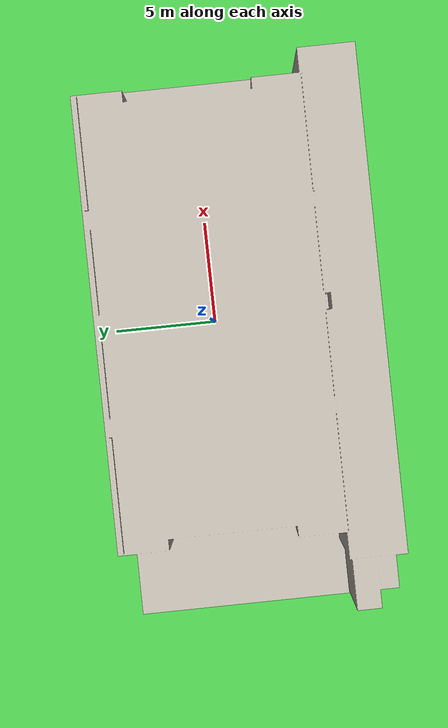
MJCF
<mujoco model="brutalist_room">
  <asset>
    <mesh
      name="brutalist_room_visual_mesh"
      file="assets/brutalist_room/brutalist_room.obj"
      scale="2 2 2"/>

    <texture
      name="brutalist_text"
      type="2d"
      file="assets/brutalist_room/Concrete_1_B.png"/>

    <material
      name="brutalist_mat"
      texture="brutalist_text"
      texuniform="false"
      reflectance="0.0"
      shininess="0.0"
      specular="0.0"/>
  </asset>

  <worldbody>
    <body name="brutalist_room_body" pos="0 0 0">
      <!-- Visual mesh -->
      <geom
        name="brutalist_room_visual_geom"
        type="mesh"
        mesh="brutalist_room_visual_mesh"
        material="brutalist_mat"
        quat="0.7071 0.7071 0 0"
        contype="0"
        conaffinity="0"
        group="1"/>

      <!-- Collision plane (RAISED 0.1m) -->
      <geom
        name="brutalist_room_collision_plane"
        type="plane"
        pos="0 0 0.006"
        size="0 0 0.1"
        contype="1"
        conaffinity="1"
        group="0"
        rgba="0.3 0.8 0.3 0.2"/>
    </body>
  </worldbody>
</mujoco>
